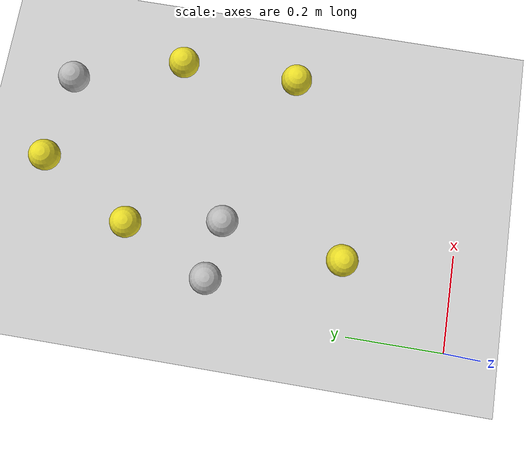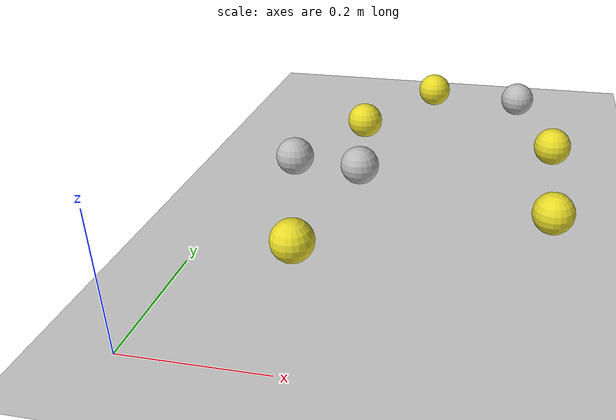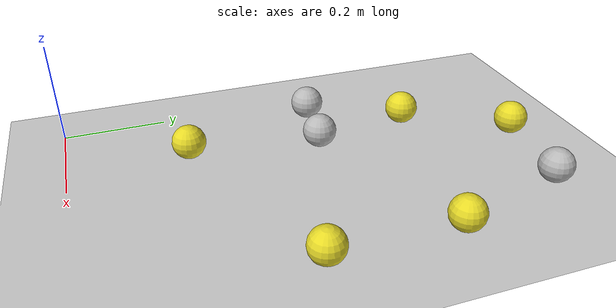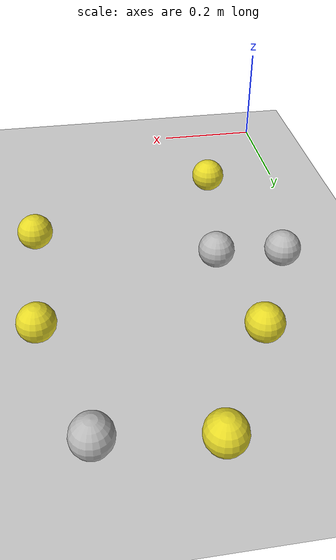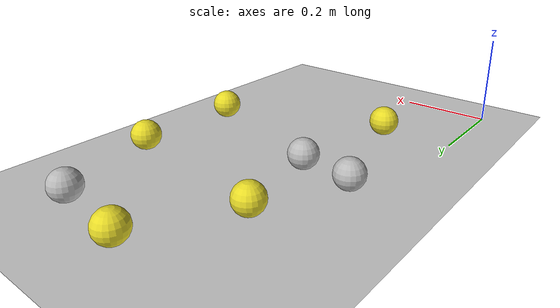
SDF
<sdf version="1.7">
 <world name="default">
  <light name="sun" type="directional">
   <pose>0 0 10 0 -0 0</pose>
   <diffuse>0.8 0.8 0.8 1</diffuse>
   <specular>0.2 0.2 0.2 1</specular>
   <attenuation>
    <range>1000</range>
    <constant>0.9</constant>
    <linear>0.01</linear>
    <quadratic>0.001</quadratic>
   </attenuation>
   <direction>-0.5 0.1 -0.9</direction>
   <spot><inner_angle>0</inner_angle><outer_angle>0</outer_angle><falloff>0</falloff></spot>
  </light>
  <model name="ground_plane">
   <static>1</static>
   <link name="link">
    <collision name="collision">
     <geometry><plane><normal>0 0 1</normal><size>100 100</size></plane></geometry>
     <surface><friction><ode><mu>100</mu><mu2>50</mu2></ode></friction></surface>
    </collision>
    <visual name="visual">
     <cast_shadows>0</cast_shadows>
     <geometry><plane><normal>0 0 1</normal><size>100 100</size></plane></geometry>
     <material>
      <script><uri>file://media/materials/scripts/gazebo.material</uri><name>Gazebo/Grey</name></script>
     </material>
    </visual>
   </link>
  </model>
  <gravity>0 0 -9.8</gravity>
  <magnetic_field>6e-06 2.3e-05 -4.2e-05</magnetic_field>
  <atmosphere type="adiabatic"/>
  <physics type="ode">
   <max_step_size>0.001</max_step_size>
   <real_time_factor>1</real_time_factor>
   <real_time_update_rate>1000</real_time_update_rate>
  </physics>
  <scene><ambient>0.4 0.4 0.4 1</ambient><background>0.7 0.7 0.7 1</background><shadows>1</shadows></scene>
  <audio><device>default</device></audio>
  <spherical_coordinates>
   <surface_model>EARTH_WGS84</surface_model>
   <latitude_deg>0</latitude_deg>
   <longitude_deg>0</longitude_deg>
   <elevation>0</elevation>
   <heading_deg>0</heading_deg>
  </spherical_coordinates>
  <model name="tennis_ball_2">
   <link name="link">
    <inertial>
     <mass>1</mass>
     <inertia><ixx>0.1</ixx><ixy>0</ixy><ixz>0</ixz><iyy>0.1</iyy><iyz>0</iyz><izz>0.1</izz></inertia>
    </inertial>
    <visual name="visual">
     <geometry><sphere><radius>0.033</radius></sphere></geometry>
     <material>Gazebo/Yellow</material>
     <material>
      <script><name>Gazebo/Yellow</name><uri>file://media/materials/scripts/gazebo.material</uri></script>
      <shader type="pixel"><normal_map>__default__</normal_map></shader>
      <ambient>0.3 0.3 0.3 1</ambient>
      <diffuse>0.7 0.7 0.7 1</diffuse>
      <specular>0.01 0.01 0.01 1</specular>
      <emissive>0 0 0 1</emissive>
     </material>
    </visual>
    <collision name="collision">
     <geometry><sphere><radius>0.033</radius></sphere></geometry>
     <surface>
      <friction>
       <ode><mu>1</mu><mu2>1</mu2><fdir1>0 0 0</fdir1><slip1>0</slip1><slip2>0</slip2></ode>
       <torsional>
        <coefficient>1</coefficient>
        <patch_radius>0</patch_radius>
        <surface_radius>0</surface_radius>
        <use_patch_radius>1</use_patch_radius>
        <ode><slip>0</slip></ode>
       </torsional>
      </friction>
      <bounce><restitution_coefficient>0</restitution_coefficient><threshold>1e+06</threshold></bounce>
      <contact>
       <collide_without_contact>0</collide_without_contact>
       <collide_without_contact_bitmask>1</collide_without_contact_bitmask>
       <collide_bitmask>1</collide_bitmask>
       <ode>
        <soft_cfm>0</soft_cfm>
        <soft_erp>0.2</soft_erp>
        <kp>1e+13</kp>
        <kd>1</kd>
        <max_vel>0.01</max_vel>
        <min_depth>0</min_depth>
       </ode>
       <bullet>
        <split_impulse>1</split_impulse>
        <split_impulse_penetration_threshold>-0.01</split_impulse_penetration_threshold>
        <soft_cfm>0</soft_cfm>
        <soft_erp>0.2</soft_erp>
        <kp>1e+13</kp>
        <kd>1</kd>
       </bullet>
      </contact>
     </surface>
    </collision>
   </link>
   <static>0</static>
   <pose>0.068924 0.499533 0.033 0 -0 0</pose>
  </model>
  <model name="tennis_ball">
   <link name="link">
    <inertial>
     <mass>1</mass>
     <inertia><ixx>0.1</ixx><ixy>0</ixy><ixz>0</ixz><iyy>0.1</iyy><iyz>0</iyz><izz>0.1</izz></inertia>
    </inertial>
    <visual name="visual">
     <geometry><sphere><radius>0.033</radius></sphere></geometry>
     <material>Gazebo/Yellow</material>
     <material>
      <script><name>Gazebo/Yellow</name><uri>file://media/materials/scripts/gazebo.material</uri></script>
      <shader type="pixel"><normal_map>__default__</normal_map></shader>
      <ambient>0.3 0.3 0.3 1</ambient>
      <diffuse>0.7 0.7 0.7 1</diffuse>
      <specular>0.01 0.01 0.01 1</specular>
      <emissive>0 0 0 1</emissive>
     </material>
    </visual>
    <collision name="collision">
     <geometry><sphere><radius>0.033</radius></sphere></geometry>
     <surface>
      <friction>
       <ode><mu>1</mu><mu2>1</mu2><fdir1>0 0 0</fdir1><slip1>0</slip1><slip2>0</slip2></ode>
       <torsional>
        <coefficient>1</coefficient>
        <patch_radius>0</patch_radius>
        <surface_radius>0</surface_radius>
        <use_patch_radius>1</use_patch_radius>
        <ode><slip>0</slip></ode>
       </torsional>
      </friction>
      <bounce><restitution_coefficient>0</restitution_coefficient><threshold>1e+06</threshold></bounce>
      <contact>
       <collide_without_contact>0</collide_without_contact>
       <collide_without_contact_bitmask>1</collide_without_contact_bitmask>
       <collide_bitmask>1</collide_bitmask>
       <ode>
        <soft_cfm>0</soft_cfm>
        <soft_erp>0.2</soft_erp>
        <kp>1e+13</kp>
        <kd>1</kd>
        <max_vel>0.01</max_vel>
        <min_depth>0</min_depth>
       </ode>
       <bullet>
        <split_impulse>1</split_impulse>
        <split_impulse_penetration_threshold>-0.01</split_impulse_penetration_threshold>
        <soft_cfm>0</soft_cfm>
        <soft_erp>0.2</soft_erp>
        <kp>1e+13</kp>
        <kd>1</kd>
       </bullet>
      </contact>
     </surface>
    </collision>
   </link>
   <static>0</static>
   <pose>0.189544 0.485567 0.033 0 -0 0</pose>
  </model>
  <model name="tennis_ball_2_0">
   <link name="link">
    <inertial>
     <mass>1</mass>
     <inertia><ixx>0.1</ixx><ixy>0</ixy><ixz>0</ixz><iyy>0.1</iyy><iyz>0</iyz><izz>0.1</izz></inertia>
    </inertial>
    <visual name="visual">
     <geometry><sphere><radius>0.033</radius></sphere></geometry>
     <material>Gazebo/Yellow</material>
     <material>
      <script><name>Gazebo/Yellow</name><uri>file://media/materials/scripts/gazebo.material</uri></script>
      <shader type="pixel"><normal_map>__default__</normal_map></shader>
      <ambient>0.3 0.3 0.3 1</ambient>
      <diffuse>0.7 0.7 0.7 1</diffuse>
      <specular>0.01 0.01 0.01 1</specular>
      <emissive>0 0 0 1</emissive>
     </material>
    </visual>
    <collision name="collision">
     <geometry><sphere><radius>0.033</radius></sphere></geometry>
     <surface>
      <friction>
       <ode><mu>1</mu><mu2>1</mu2><fdir1>0 0 0</fdir1><slip1>0</slip1><slip2>0</slip2></ode>
       <torsional>
        <coefficient>1</coefficient>
        <patch_radius>0</patch_radius>
        <surface_radius>0</surface_radius>
        <use_patch_radius>1</use_patch_radius>
        <ode><slip>0</slip></ode>
       </torsional>
      </friction>
      <bounce><restitution_coefficient>0</restitution_coefficient><threshold>1e+06</threshold></bounce>
      <contact>
       <collide_without_contact>0</collide_without_contact>
       <collide_without_contact_bitmask>1</collide_without_contact_bitmask>
       <collide_bitmask>1</collide_bitmask>
       <ode>
        <soft_cfm>0</soft_cfm>
        <soft_erp>0.2</soft_erp>
        <kp>1e+13</kp>
        <kd>1</kd>
        <max_vel>0.01</max_vel>
        <min_depth>0</min_depth>
       </ode>
       <bullet>
        <split_impulse>1</split_impulse>
        <split_impulse_penetration_threshold>-0.01</split_impulse_penetration_threshold>
        <soft_cfm>0</soft_cfm>
        <soft_erp>0.2</soft_erp>
        <kp>1e+13</kp>
        <kd>1</kd>
       </bullet>
      </contact>
     </surface>
    </collision>
   </link>
   <static>0</static>
   <pose>0.445135 0.852919 0.033 0 -0 0</pose>
  </model>
  <model name="tennis_ball_2_1">
   <link name="link">
    <inertial>
     <mass>1</mass>
     <inertia><ixx>0.1</ixx><ixy>0</ixy><ixz>0</ixz><iyy>0.1</iyy><iyz>0</iyz><izz>0.1</izz></inertia>
    </inertial>
    <visual name="visual">
     <geometry><sphere><radius>0.033</radius></sphere></geometry>
     <material>
      <script><name>Gazebo/Yellow</name><uri>file://media/materials/scripts/gazebo.material</uri></script>
      <shader type="pixel"><normal_map>__default__</normal_map></shader>
      <ambient>0.3 0.3 0.3 1</ambient>
      <diffuse>0.7 0.7 0.7 1</diffuse>
      <specular>0.01 0.01 0.01 1</specular>
      <emissive>0 0 0 1</emissive>
     </material>
    </visual>
    <collision name="collision">
     <geometry><sphere><radius>0.033</radius></sphere></geometry>
     <surface>
      <friction>
       <ode><mu>1</mu><mu2>1</mu2><fdir1>0 0 0</fdir1><slip1>0</slip1><slip2>0</slip2></ode>
       <torsional>
        <coefficient>1</coefficient>
        <patch_radius>0</patch_radius>
        <surface_radius>0</surface_radius>
        <use_patch_radius>1</use_patch_radius>
        <ode><slip>0</slip></ode>
       </torsional>
      </friction>
      <bounce><restitution_coefficient>0</restitution_coefficient><threshold>1e+06</threshold></bounce>
      <contact>
       <collide_without_contact>0</collide_without_contact>
       <collide_without_contact_bitmask>1</collide_without_contact_bitmask>
       <collide_bitmask>1</collide_bitmask>
       <ode>
        <soft_cfm>0</soft_cfm>
        <soft_erp>0.2</soft_erp>
        <kp>1e+13</kp>
        <kd>1</kd>
        <max_vel>0.01</max_vel>
        <min_depth>0</min_depth>
       </ode>
       <bullet>
        <split_impulse>1</split_impulse>
        <split_impulse_penetration_threshold>-0.01</split_impulse_penetration_threshold>
        <soft_cfm>0</soft_cfm>
        <soft_erp>0.2</soft_erp>
        <kp>1e+13</kp>
        <kd>1</kd>
       </bullet>
      </contact>
     </surface>
    </collision>
   </link>
   <static>0</static>
   <pose>0.516157 0.625516 0.033 0 -0 0</pose>
  </model>
  <model name="tennis_ball_2_2">
   <link name="link">
    <inertial>
     <mass>1</mass>
     <inertia><ixx>0.1</ixx><ixy>0</ixy><ixz>0</ixz><iyy>0.1</iyy><iyz>0</iyz><izz>0.1</izz></inertia>
    </inertial>
    <visual name="visual">
     <geometry><sphere><radius>0.033</radius></sphere></geometry>
     <material>
      <script><name>Gazebo/Yellow</name><uri>file://media/materials/scripts/gazebo.material</uri></script>
      <shader type="pixel"><normal_map>__default__</normal_map></shader>
      <ambient>0.3 0.3 0.3 1</ambient>
      <diffuse>0.7 0.7 0.7 1</diffuse>
      <specular>0.01 0.01 0.01 1</specular>
      <emissive>0 0 0 1</emissive>
     </material>
    </visual>
    <collision name="collision">
     <geometry><sphere><radius>0.033</radius></sphere></geometry>
     <surface>
      <friction>
       <ode><mu>1</mu><mu2>1</mu2><fdir1>0 0 0</fdir1><slip1>0</slip1><slip2>0</slip2></ode>
       <torsional>
        <coefficient>1</coefficient>
        <patch_radius>0</patch_radius>
        <surface_radius>0</surface_radius>
        <use_patch_radius>1</use_patch_radius>
        <ode><slip>0</slip></ode>
       </torsional>
      </friction>
      <bounce><restitution_coefficient>0</restitution_coefficient><threshold>1e+06</threshold></bounce>
      <contact>
       <collide_without_contact>0</collide_without_contact>
       <collide_without_contact_bitmask>1</collide_without_contact_bitmask>
       <collide_bitmask>1</collide_bitmask>
       <ode>
        <soft_cfm>0</soft_cfm>
        <soft_erp>0.2</soft_erp>
        <kp>1e+13</kp>
        <kd>1</kd>
        <max_vel>0.01</max_vel>
        <min_depth>0</min_depth>
       </ode>
       <bullet>
        <split_impulse>1</split_impulse>
        <split_impulse_penetration_threshold>-0.01</split_impulse_penetration_threshold>
        <soft_cfm>0</soft_cfm>
        <soft_erp>0.2</soft_erp>
        <kp>1e+13</kp>
        <kd>1</kd>
       </bullet>
      </contact>
     </surface>
    </collision>
   </link>
   <static>0</static>
   <pose>0.149955 0.231869 0.033 0 -0 0</pose>
  </model>
  <model name="tennis_ball_0">
   <link name="link">
    <inertial>
     <mass>1</mass>
     <inertia><ixx>0.1</ixx><ixy>0</ixy><ixz>0</ixz><iyy>0.1</iyy><iyz>0</iyz><izz>0.1</izz></inertia>
    </inertial>
    <visual name="visual">
     <geometry><sphere><radius>0.033</radius></sphere></geometry>
     <material>
      <script><name>Gazebo/Yellow</name><uri>file://media/materials/scripts/gazebo.material</uri></script>
      <shader type="pixel"><normal_map>__default__</normal_map></shader>
      <ambient>0.3 0.3 0.3 1</ambient>
      <diffuse>0.7 0.7 0.7 1</diffuse>
      <specular>0.01 0.01 0.01 1</specular>
      <emissive>0 0 0 1</emissive>
     </material>
    </visual>
    <collision name="collision">
     <geometry><sphere><radius>0.033</radius></sphere></geometry>
     <surface>
      <friction>
       <ode><mu>1</mu><mu2>1</mu2><fdir1>0 0 0</fdir1><slip1>0</slip1><slip2>0</slip2></ode>
       <torsional>
        <coefficient>1</coefficient>
        <patch_radius>0</patch_radius>
        <surface_radius>0</surface_radius>
        <use_patch_radius>1</use_patch_radius>
        <ode><slip>0</slip></ode>
       </torsional>
      </friction>
      <bounce><restitution_coefficient>0</restitution_coefficient><threshold>1e+06</threshold></bounce>
      <contact>
       <collide_without_contact>0</collide_without_contact>
       <collide_without_contact_bitmask>1</collide_without_contact_bitmask>
       <collide_bitmask>1</collide_bitmask>
       <ode>
        <soft_cfm>0</soft_cfm>
        <soft_erp>0.2</soft_erp>
        <kp>1e+13</kp>
        <kd>1</kd>
        <max_vel>0.01</max_vel>
        <min_depth>0</min_depth>
       </ode>
       <bullet>
        <split_impulse>1</split_impulse>
        <split_impulse_penetration_threshold>-0.01</split_impulse_penetration_threshold>
        <soft_cfm>0</soft_cfm>
        <soft_erp>0.2</soft_erp>
        <kp>1e+13</kp>
        <kd>1</kd>
       </bullet>
      </contact>
     </surface>
    </collision>
   </link>
   <static>0</static>
   <pose>0.266157 0.876664 0.033 0 -0 0</pose>
  </model>
  <model name="tennis_ball_1">
   <link name="link">
    <inertial>
     <mass>1</mass>
     <inertia><ixx>0.1</ixx><ixy>0</ixy><ixz>0</ixz><iyy>0.1</iyy><iyz>0</iyz><izz>0.1</izz></inertia>
    </inertial>
    <visual name="visual">
     <geometry><sphere><radius>0.033</radius></sphere></geometry>
     <material>
      <script><name>Gazebo/Yellow</name><uri>file://media/materials/scripts/gazebo.material</uri></script>
      <shader type="pixel"><normal_map>__default__</normal_map></shader>
      <ambient>0.3 0.3 0.3 1</ambient>
      <diffuse>0.7 0.7 0.7 1</diffuse>
      <specular>0.01 0.01 0.01 1</specular>
      <emissive>0 0 0 1</emissive>
     </material>
    </visual>
    <collision name="collision">
     <geometry><sphere><radius>0.033</radius></sphere></geometry>
     <surface>
      <friction>
       <ode><mu>1</mu><mu2>1</mu2><fdir1>0 0 0</fdir1><slip1>0</slip1><slip2>0</slip2></ode>
       <torsional>
        <coefficient>1</coefficient>
        <patch_radius>0</patch_radius>
        <surface_radius>0</surface_radius>
        <use_patch_radius>1</use_patch_radius>
        <ode><slip>0</slip></ode>
       </torsional>
      </friction>
      <bounce><restitution_coefficient>0</restitution_coefficient><threshold>1e+06</threshold></bounce>
      <contact>
       <collide_without_contact>0</collide_without_contact>
       <collide_without_contact_bitmask>1</collide_without_contact_bitmask>
       <collide_bitmask>1</collide_bitmask>
       <ode>
        <soft_cfm>0</soft_cfm>
        <soft_erp>0.2</soft_erp>
        <kp>1e+13</kp>
        <kd>1</kd>
        <max_vel>0.01</max_vel>
        <min_depth>0</min_depth>
       </ode>
       <bullet>
        <split_impulse>1</split_impulse>
        <split_impulse_penetration_threshold>-0.01</split_impulse_penetration_threshold>
        <soft_cfm>0</soft_cfm>
        <soft_erp>0.2</soft_erp>
        <kp>1e+13</kp>
        <kd>1</kd>
       </bullet>
      </contact>
     </surface>
    </collision>
   </link>
   <static>0</static>
   <pose>0.154992 0.681408 0.033 0 -0 0</pose>
  </model>
  <model name="tennis_ball_3">
   <link name="link">
    <inertial>
     <mass>1</mass>
     <inertia><ixx>0.1</ixx><ixy>0</ixy><ixz>0</ixz><iyy>0.1</iyy><iyz>0</iyz><izz>0.1</izz></inertia>
    </inertial>
    <visual name="visual">
     <geometry><sphere><radius>0.033</radius></sphere></geometry>
     <material>
      <script><name>Gazebo/Yellow</name><uri>file://media/materials/scripts/gazebo.material</uri></script>
      <shader type="pixel"><normal_map>__default__</normal_map></shader>
      <ambient>0.3 0.3 0.3 1</ambient>
      <diffuse>0.7 0.7 0.7 1</diffuse>
      <specular>0.01 0.01 0.01 1</specular>
      <emissive>0 0 0 1</emissive>
     </material>
    </visual>
    <collision name="collision">
     <geometry><sphere><radius>0.033</radius></sphere></geometry>
     <surface>
      <friction>
       <ode><mu>1</mu><mu2>1</mu2><fdir1>0 0 0</fdir1><slip1>0</slip1><slip2>0</slip2></ode>
       <torsional>
        <coefficient>1</coefficient>
        <patch_radius>0</patch_radius>
        <surface_radius>0</surface_radius>
        <use_patch_radius>1</use_patch_radius>
        <ode><slip>0</slip></ode>
       </torsional>
      </friction>
      <bounce><restitution_coefficient>0</restitution_coefficient><threshold>1e+06</threshold></bounce>
      <contact>
       <collide_without_contact>0</collide_without_contact>
       <collide_without_contact_bitmask>1</collide_without_contact_bitmask>
       <collide_bitmask>1</collide_bitmask>
       <ode>
        <soft_cfm>0</soft_cfm>
        <soft_erp>0.2</soft_erp>
        <kp>1e+13</kp>
        <kd>1</kd>
        <max_vel>0.01</max_vel>
        <min_depth>0</min_depth>
       </ode>
       <bullet>
        <split_impulse>1</split_impulse>
        <split_impulse_penetration_threshold>-0.01</split_impulse_penetration_threshold>
        <soft_cfm>0</soft_cfm>
        <soft_erp>0.2</soft_erp>
        <kp>1e+13</kp>
        <kd>1</kd>
       </bullet>
      </contact>
     </surface>
    </collision>
   </link>
   <static>0</static>
   <pose>0.516212 0.380359 0.033 0 -0 0</pose>
  </model>
 </world>
</sdf>
